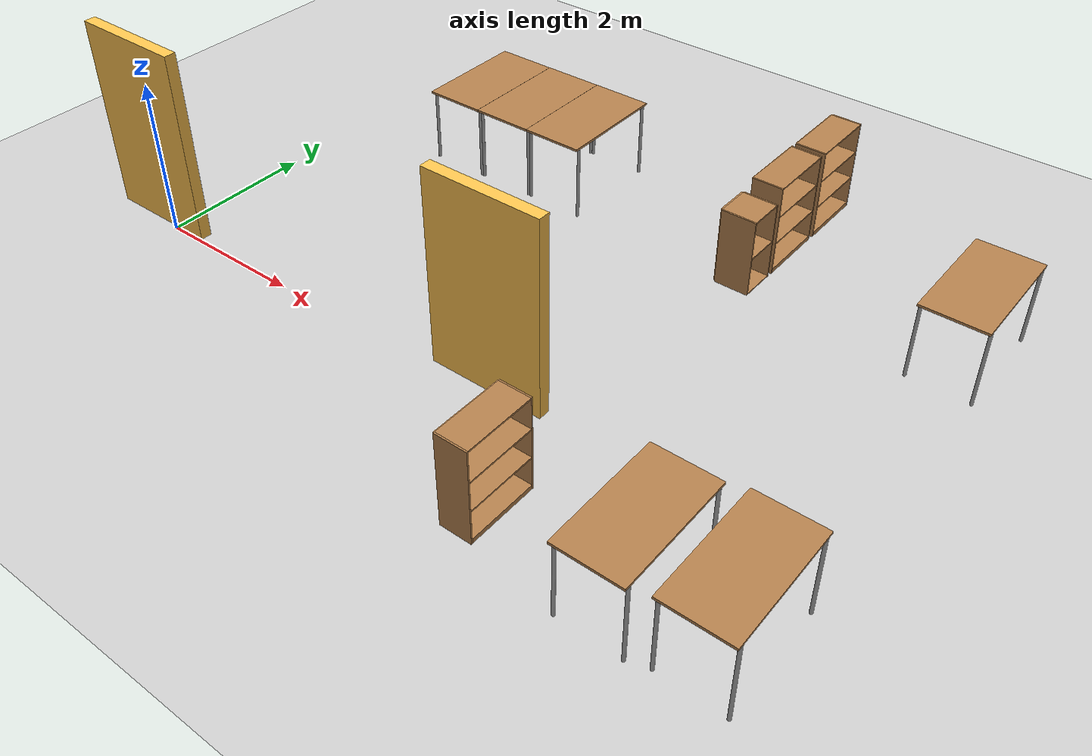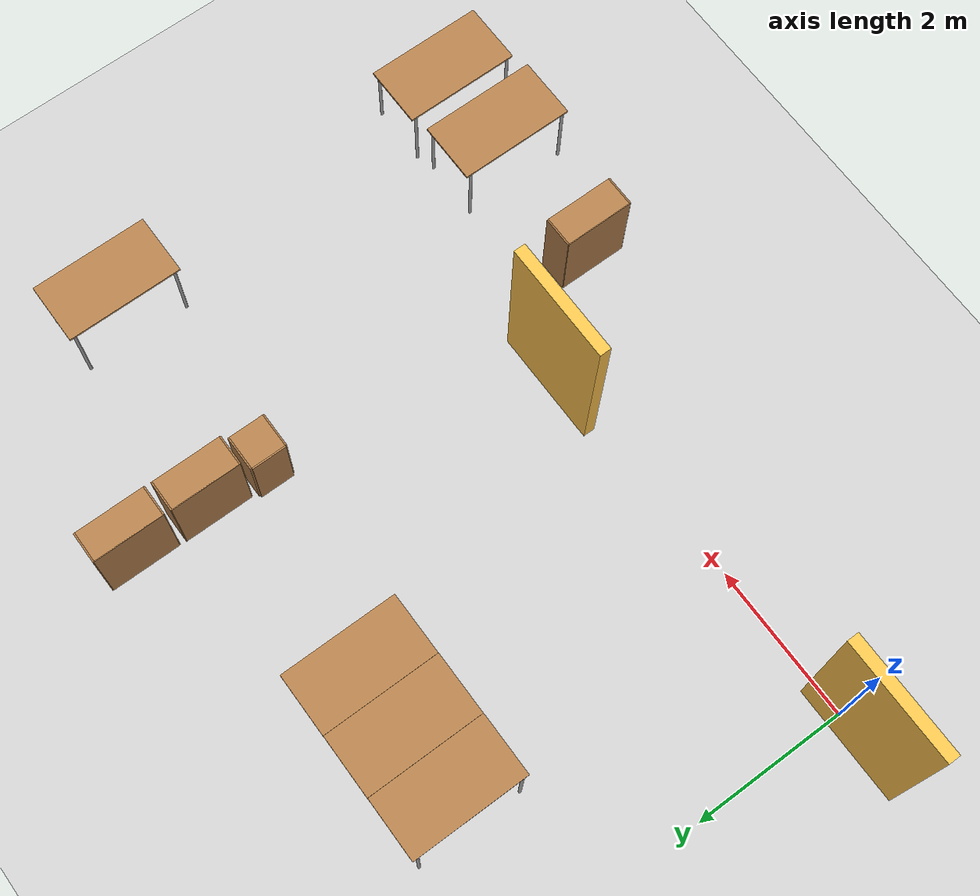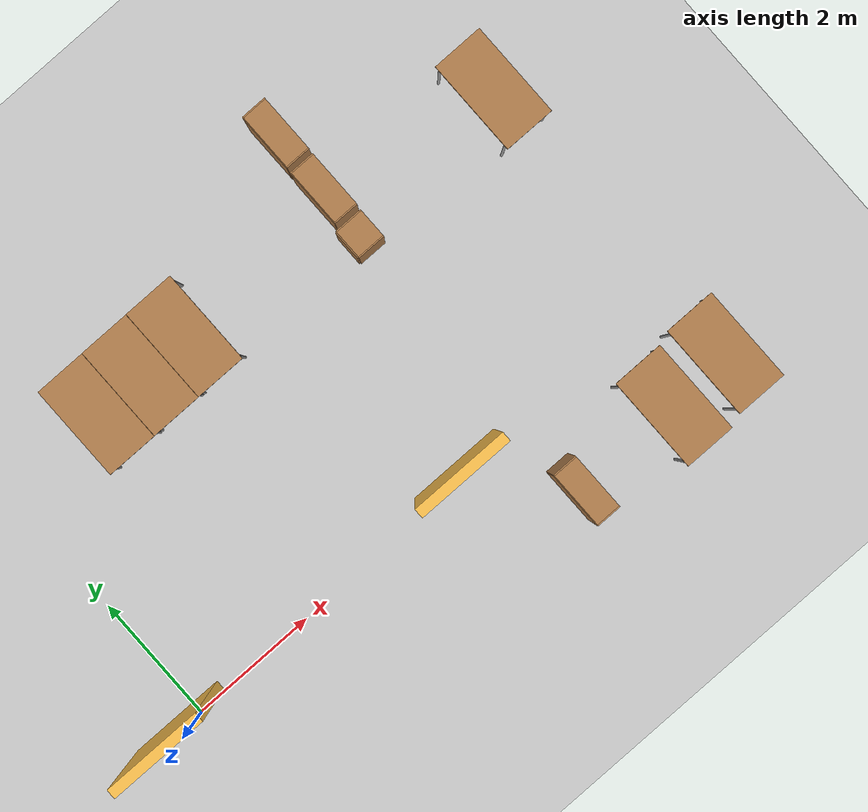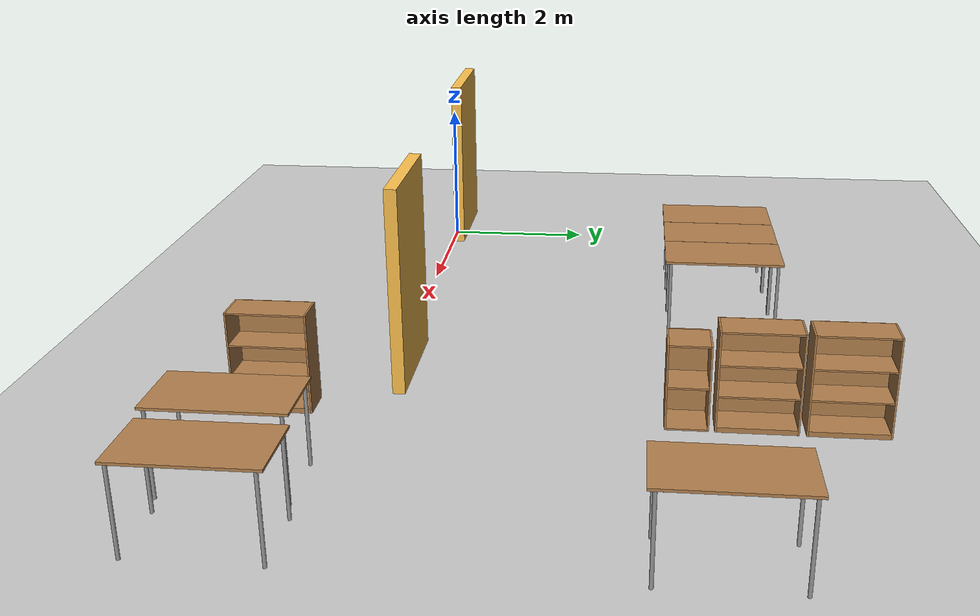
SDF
<sdf version="1.6">
 <world name="default">
  <model name="ground_plane">
   <static>1</static>
   <link name="link">
    <collision name="collision">
     <geometry><plane><normal>0 0 1</normal><size>100 100</size></plane></geometry>
     <surface>
      <contact><collide_bitmask>65535</collide_bitmask></contact>
      <friction><ode><mu>100</mu><mu2>50</mu2></ode></friction>
     </surface>
    </collision>
    <visual name="visual">
     <cast_shadows>0</cast_shadows>
     <geometry><plane><normal>0 0 1</normal><size>100 100</size></plane></geometry>
     <material>
      <script><uri>file://media/materials/scripts/gazebo.material</uri><name>Gazebo/Grey</name></script>
     </material>
    </visual>
   </link>
  </model>
  <model name="model-03">
   <pose>2.36951 0.15153 0 0 -0 0</pose>
   <link name="Wall_83">
    <collision name="Wall_83_Collision">
     <geometry><box><size>1.5 0.15 2.5</size></box></geometry>
     <pose>0 0 1.25 0 -0 0</pose>
    </collision>
    <visual name="Wall_83_Visual">
     <pose>0 0 1.25 0 -0 0</pose>
     <geometry><box><size>1.5 0.15 2.5</size></box></geometry>
     <material>
      <script><uri>file://media/materials/scripts/gazebo.material</uri><name>Gazebo/Grey</name></script>
      <ambient>1 0.764706 0.305882 1</ambient>
     </material>
     <meta><layer>0</layer></meta>
    </visual>
    <pose>-2.6608 -0.049649 0 0 -0 3.14159</pose>
   </link>
   <link name="Wall_85">
    <collision name="Wall_85_Collision">
     <geometry><box><size>1.5 0.15 2.5</size></box></geometry>
     <pose>0 0 1.25 0 -0 0</pose>
    </collision>
    <visual name="Wall_85_Visual">
     <pose>0 0 1.25 0 -0 0</pose>
     <geometry><box><size>1.5 0.15 2.5</size></box></geometry>
     <material>
      <script><uri>file://media/materials/scripts/gazebo.material</uri><name>Gazebo/Grey</name></script>
      <ambient>1 0.764706 0.305882 1</ambient>
     </material>
     <meta><layer>0</layer></meta>
    </visual>
    <pose>2.6608 0.049649 0 0 -0 0</pose>
   </link>
   <static>1</static>
  </model>
  <model name="table">
   <static>1</static>
   <link name="link">
    <collision name="surface">
     <pose>0 0 1 0 -0 0</pose>
     <geometry><box><size>1.5 0.8 0.03</size></box></geometry>
     <surface><friction><ode><mu>0.6</mu><mu2>0.6</mu2></ode></friction></surface>
    </collision>
    <visual name="visual1">
     <pose>0 0 1 0 -0 0</pose>
     <geometry><box><size>1.5 0.8 0.03</size></box></geometry>
     <material>
      <script><uri>file://media/materials/scripts/gazebo.material</uri><name>Gazebo/Wood</name></script>
     </material>
    </visual>
    <collision name="front_left_leg">
     <pose>0.68 0.38 0.5 0 -0 0</pose>
     <geometry><cylinder><radius>0.02</radius><length>1</length></cylinder></geometry>
    </collision>
    <visual name="front_left_leg">
     <pose>0.68 0.38 0.5 0 -0 0</pose>
     <geometry><cylinder><radius>0.02</radius><length>1</length></cylinder></geometry>
     <material>
      <script><uri>file://media/materials/scripts/gazebo.material</uri><name>Gazebo/Grey</name></script>
     </material>
    </visual>
    <collision name="front_right_leg">
     <pose>0.68 -0.38 0.5 0 -0 0</pose>
     <geometry><cylinder><radius>0.02</radius><length>1</length></cylinder></geometry>
    </collision>
    <visual name="front_right_leg">
     <pose>0.68 -0.38 0.5 0 -0 0</pose>
     <geometry><cylinder><radius>0.02</radius><length>1</length></cylinder></geometry>
     <material>
      <script><uri>file://media/materials/scripts/gazebo.material</uri><name>Gazebo/Grey</name></script>
     </material>
    </visual>
    <collision name="back_right_leg">
     <pose>-0.68 -0.38 0.5 0 -0 0</pose>
     <geometry><cylinder><radius>0.02</radius><length>1</length></cylinder></geometry>
    </collision>
    <visual name="back_right_leg">
     <pose>-0.68 -0.38 0.5 0 -0 0</pose>
     <geometry><cylinder><radius>0.02</radius><length>1</length></cylinder></geometry>
     <material>
      <script><uri>file://media/materials/scripts/gazebo.material</uri><name>Gazebo/Grey</name></script>
     </material>
    </visual>
    <collision name="back_left_leg">
     <pose>-0.68 0.38 0.5 0 -0 0</pose>
     <geometry><cylinder><radius>0.02</radius><length>1</length></cylinder></geometry>
    </collision>
    <visual name="back_left_leg">
     <pose>-0.68 0.38 0.5 0 -0 0</pose>
     <geometry><cylinder><radius>0.02</radius><length>1</length></cylinder></geometry>
     <material>
      <script><uri>file://media/materials/scripts/gazebo.material</uri><name>Gazebo/Grey</name></script>
     </material>
    </visual>
   </link>
   <pose>7.81399 -1.06984 -0.000273 0 -0 1.5708</pose>
  </model>
  <model name="table_clone_1">
   <static>1</static>
   <link name="link">
    <collision name="surface">
     <pose>0 0 1 0 -0 0</pose>
     <geometry><box><size>1.5 0.8 0.03</size></box></geometry>
     <surface><friction><ode><mu>0.6</mu><mu2>0.6</mu2></ode></friction></surface>
    </collision>
    <visual name="visual1">
     <pose>0 0 1 0 -0 0</pose>
     <geometry><box><size>1.5 0.8 0.03</size></box></geometry>
     <material>
      <script><uri>file://media/materials/scripts/gazebo.material</uri><name>Gazebo/Wood</name></script>
     </material>
    </visual>
    <collision name="front_left_leg">
     <pose>0.68 0.38 0.5 0 -0 0</pose>
     <geometry><cylinder><radius>0.02</radius><length>1</length></cylinder></geometry>
    </collision>
    <visual name="front_left_leg">
     <pose>0.68 0.38 0.5 0 -0 0</pose>
     <geometry><cylinder><radius>0.02</radius><length>1</length></cylinder></geometry>
     <material>
      <script><uri>file://media/materials/scripts/gazebo.material</uri><name>Gazebo/Grey</name></script>
     </material>
    </visual>
    <collision name="front_right_leg">
     <pose>0.68 -0.38 0.5 0 -0 0</pose>
     <geometry><cylinder><radius>0.02</radius><length>1</length></cylinder></geometry>
    </collision>
    <visual name="front_right_leg">
     <pose>0.68 -0.38 0.5 0 -0 0</pose>
     <geometry><cylinder><radius>0.02</radius><length>1</length></cylinder></geometry>
     <material>
      <script><uri>file://media/materials/scripts/gazebo.material</uri><name>Gazebo/Grey</name></script>
     </material>
    </visual>
    <collision name="back_right_leg">
     <pose>-0.68 -0.38 0.5 0 -0 0</pose>
     <geometry><cylinder><radius>0.02</radius><length>1</length></cylinder></geometry>
    </collision>
    <visual name="back_right_leg">
     <pose>-0.68 -0.38 0.5 0 -0 0</pose>
     <geometry><cylinder><radius>0.02</radius><length>1</length></cylinder></geometry>
     <material>
      <script><uri>file://media/materials/scripts/gazebo.material</uri><name>Gazebo/Grey</name></script>
     </material>
    </visual>
    <collision name="back_left_leg">
     <pose>-0.68 0.38 0.5 0 -0 0</pose>
     <geometry><cylinder><radius>0.02</radius><length>1</length></cylinder></geometry>
    </collision>
    <visual name="back_left_leg">
     <pose>-0.68 0.38 0.5 0 -0 0</pose>
     <geometry><cylinder><radius>0.02</radius><length>1</length></cylinder></geometry>
     <material>
      <script><uri>file://media/materials/scripts/gazebo.material</uri><name>Gazebo/Grey</name></script>
     </material>
    </visual>
   </link>
   <pose>8.81542 -0.994729 0 0 -0 1.5708</pose>
  </model>
  <model name="table_clone_1_clone">
   <static>1</static>
   <link name="link">
    <collision name="surface">
     <pose>0 0 1 0 -0 0</pose>
     <geometry><box><size>1.5 0.8 0.03</size></box></geometry>
     <surface><friction><ode><mu>0.6</mu><mu2>0.6</mu2></ode></friction></surface>
    </collision>
    <visual name="visual1">
     <pose>0 0 1 0 -0 0</pose>
     <geometry><box><size>1.5 0.8 0.03</size></box></geometry>
     <material>
      <script><uri>file://media/materials/scripts/gazebo.material</uri><name>Gazebo/Wood</name></script>
     </material>
    </visual>
    <collision name="front_left_leg">
     <pose>0.68 0.38 0.5 0 -0 0</pose>
     <geometry><cylinder><radius>0.02</radius><length>1</length></cylinder></geometry>
    </collision>
    <visual name="front_left_leg">
     <pose>0.68 0.38 0.5 0 -0 0</pose>
     <geometry><cylinder><radius>0.02</radius><length>1</length></cylinder></geometry>
     <material>
      <script><uri>file://media/materials/scripts/gazebo.material</uri><name>Gazebo/Grey</name></script>
     </material>
    </visual>
    <collision name="front_right_leg">
     <pose>0.68 -0.38 0.5 0 -0 0</pose>
     <geometry><cylinder><radius>0.02</radius><length>1</length></cylinder></geometry>
    </collision>
    <visual name="front_right_leg">
     <pose>0.68 -0.38 0.5 0 -0 0</pose>
     <geometry><cylinder><radius>0.02</radius><length>1</length></cylinder></geometry>
     <material>
      <script><uri>file://media/materials/scripts/gazebo.material</uri><name>Gazebo/Grey</name></script>
     </material>
    </visual>
    <collision name="back_right_leg">
     <pose>-0.68 -0.38 0.5 0 -0 0</pose>
     <geometry><cylinder><radius>0.02</radius><length>1</length></cylinder></geometry>
    </collision>
    <visual name="back_right_leg">
     <pose>-0.68 -0.38 0.5 0 -0 0</pose>
     <geometry><cylinder><radius>0.02</radius><length>1</length></cylinder></geometry>
     <material>
      <script><uri>file://media/materials/scripts/gazebo.material</uri><name>Gazebo/Grey</name></script>
     </material>
    </visual>
    <collision name="back_left_leg">
     <pose>-0.68 0.38 0.5 0 -0 0</pose>
     <geometry><cylinder><radius>0.02</radius><length>1</length></cylinder></geometry>
    </collision>
    <visual name="back_left_leg">
     <pose>-0.68 0.38 0.5 0 -0 0</pose>
     <geometry><cylinder><radius>0.02</radius><length>1</length></cylinder></geometry>
     <material>
      <script><uri>file://media/materials/scripts/gazebo.material</uri><name>Gazebo/Grey</name></script>
     </material>
    </visual>
   </link>
   <pose>8.81647 3.80552 0 0 -0 1.5708</pose>
  </model>
  <model name="bookshelf">
   <static>1</static>
   <link name="link">
    <inertial><mass>1</mass></inertial>
    <collision name="back">
     <pose>0 0.005 0.6 0 -0 0</pose>
     <geometry><box><size>0.9 0.01 1.2</size></box></geometry>
    </collision>
    <visual name="visual1">
     <pose>0 0.005 0.6 0 -0 0</pose>
     <geometry><box><size>0.9 0.01 1.2</size></box></geometry>
     <material>
      <script><uri>file://media/materials/scripts/gazebo.material</uri><name>Gazebo/Wood</name></script>
     </material>
    </visual>
    <collision name="left_side">
     <pose>0.45 -0.195 0.6 0 -0 0</pose>
     <geometry><box><size>0.02 0.4 1.2</size></box></geometry>
    </collision>
    <visual name="visual2">
     <pose>0.45 -0.195 0.6 0 -0 0</pose>
     <geometry><box><size>0.02 0.4 1.2</size></box></geometry>
     <material>
      <script><uri>file://media/materials/scripts/gazebo.material</uri><name>Gazebo/Wood</name></script>
     </material>
    </visual>
    <collision name="right_side">
     <pose>-0.45 -0.195 0.6 0 -0 0</pose>
     <geometry><box><size>0.02 0.4 1.2</size></box></geometry>
    </collision>
    <visual name="visual3">
     <pose>-0.45 -0.195 0.6 0 -0 0</pose>
     <geometry><box><size>0.02 0.4 1.2</size></box></geometry>
     <material>
      <script><uri>file://media/materials/scripts/gazebo.material</uri><name>Gazebo/Wood</name></script>
     </material>
    </visual>
    <collision name="bottom">
     <pose>0 -0.195 0.03 0 -0 0</pose>
     <geometry><box><size>0.88 0.4 0.06</size></box></geometry>
    </collision>
    <visual name="visual4">
     <pose>0 -0.195 0.03 0 -0 0</pose>
     <geometry><box><size>0.88 0.4 0.06</size></box></geometry>
     <material>
      <script><uri>file://media/materials/scripts/gazebo.material</uri><name>Gazebo/Wood</name></script>
     </material>
    </visual>
    <collision name="top">
     <pose>0 -0.195 1.19 0 -0 0</pose>
     <geometry><box><size>0.88 0.4 0.02</size></box></geometry>
    </collision>
    <visual name="visual5">
     <pose>0 -0.195 1.19 0 -0 0</pose>
     <geometry><box><size>0.88 0.4 0.02</size></box></geometry>
     <material>
      <script><uri>file://media/materials/scripts/gazebo.material</uri><name>Gazebo/Wood</name></script>
     </material>
    </visual>
    <collision name="low_shelf">
     <pose>0 -0.195 0.43 0 -0 0</pose>
     <geometry><box><size>0.88 0.4 0.02</size></box></geometry>
    </collision>
    <visual name="visual6">
     <pose>0 -0.195 0.43 0 -0 0</pose>
     <geometry><box><size>0.88 0.4 0.02</size></box></geometry>
     <material>
      <script><uri>file://media/materials/scripts/gazebo.material</uri><name>Gazebo/Wood</name></script>
     </material>
    </visual>
    <collision name="high_shelf">
     <pose>0 -0.195 0.8 0 -0 0</pose>
     <geometry><box><size>0.88 0.4 0.02</size></box></geometry>
    </collision>
    <visual name="visual7">
     <pose>0 -0.195 0.8 0 -0 0</pose>
     <geometry><box><size>0.88 0.4 0.02</size></box></geometry>
     <material>
      <script><uri>file://media/materials/scripts/gazebo.material</uri><name>Gazebo/Wood</name></script>
     </material>
    </visual>
   </link>
   <pose>5.97643 4.28947 0 0 -0 1.5708</pose>
  </model>
  <model name="cabinet">
   <static>1</static>
   <link name="cabinet_bottom_plate">
    <inertial>
     <pose>0 0 -1 0 -0 0</pose>
     <inertia><ixx>2.05</ixx><ixy>0</ixy><ixz>0</ixz><iyy>2.05</iyy><iyz>0</iyz><izz>2.05</izz></inertia>
     <mass>25</mass>
    </inertial>
    <collision name="cabinet_bottom_plate_geom">
     <pose>0 0 0.01 0 -0 0</pose>
     <geometry><box><size>0.45 0.45 0.02</size></box></geometry>
    </collision>
    <visual name="cabinet_bottom_plate_geom_visual">
     <pose>0 0 0.01 0 -0 0</pose>
     <geometry><box><size>0.45 0.45 0.02</size></box></geometry>
     <material>
      <script><uri>file://media/materials/scripts/gazebo.material</uri><name>Gazebo/Wood</name></script>
     </material>
    </visual>
    <collision name="cabinet_bottom_plate_geom_cabinet_back_plate">
     <pose>0.235 0 0.51 0 -0 0</pose>
     <geometry><box><size>0.02 0.45 1.02</size></box></geometry>
    </collision>
    <visual name="cabinet_bottom_plate_geom_cabinet_back_plate_visual">
     <pose>0.235 0 0.51 0 -0 0</pose>
     <geometry><box><size>0.02 0.45 1.02</size></box></geometry>
     <material>
      <script><uri>file://media/materials/scripts/gazebo.material</uri><name>Gazebo/Wood</name></script>
     </material>
    </visual>
    <collision name="cabinet_bottom_plate_geom_cabinet_left_plate">
     <pose>0 0.235 0.51 0 -0 0</pose>
     <geometry><box><size>0.45 0.02 1.02</size></box></geometry>
    </collision>
    <visual name="cabinet_bottom_plate_geom_cabinet_left_plate_visual">
     <pose>0 0.235 0.51 0 -0 0</pose>
     <geometry><box><size>0.45 0.02 1.02</size></box></geometry>
     <material>
      <script><uri>file://media/materials/scripts/gazebo.material</uri><name>Gazebo/Wood</name></script>
     </material>
    </visual>
    <collision name="cabinet_bottom_plate_geom_cabinet_middle_plate">
     <pose>0 0 0.51 0 -0 0</pose>
     <geometry><box><size>0.45 0.45 0.02</size></box></geometry>
    </collision>
    <visual name="cabinet_bottom_plate_geom_cabinet_middle_plate_visual">
     <pose>0 0 0.51 0 -0 0</pose>
     <geometry><box><size>0.45 0.45 0.02</size></box></geometry>
     <material>
      <script><uri>file://media/materials/scripts/gazebo.material</uri><name>Gazebo/Wood</name></script>
     </material>
    </visual>
    <collision name="cabinet_bottom_plate_geom_cabinet_right_plate">
     <pose>0 -0.235 0.51 0 -0 0</pose>
     <geometry><box><size>0.45 0.02 1.02</size></box></geometry>
    </collision>
    <visual name="cabinet_bottom_plate_geom_cabinet_right_plate_visual">
     <pose>0 -0.235 0.51 0 -0 0</pose>
     <geometry><box><size>0.45 0.02 1.02</size></box></geometry>
     <material>
      <script><uri>file://media/materials/scripts/gazebo.material</uri><name>Gazebo/Wood</name></script>
     </material>
    </visual>
    <collision name="cabinet_bottom_plate_geom_cabinet_top_plate">
     <pose>0 0 1.01 0 -0 0</pose>
     <geometry><box><size>0.45 0.45 0.02</size></box></geometry>
    </collision>
    <visual name="cabinet_bottom_plate_geom_cabinet_top_plate_visual">
     <pose>0 0 1.01 0 -0 0</pose>
     <geometry><box><size>0.45 0.45 0.02</size></box></geometry>
     <material>
      <script><uri>file://media/materials/scripts/gazebo.material</uri><name>Gazebo/Wood</name></script>
     </material>
    </visual>
   </link>
   <pose>6.14148 3.52326 0 0 -0 3.1415</pose>
  </model>
  <model name="bookshelf_clone_3">
   <static>1</static>
   <link name="link">
    <inertial><mass>1</mass></inertial>
    <collision name="back">
     <pose>0 0.005 0.6 0 -0 0</pose>
     <geometry><box><size>0.9 0.01 1.2</size></box></geometry>
    </collision>
    <visual name="visual1">
     <pose>0 0.005 0.6 0 -0 0</pose>
     <geometry><box><size>0.9 0.01 1.2</size></box></geometry>
     <material>
      <script><uri>file://media/materials/scripts/gazebo.material</uri><name>Gazebo/Wood</name></script>
     </material>
    </visual>
    <collision name="left_side">
     <pose>0.45 -0.195 0.6 0 -0 0</pose>
     <geometry><box><size>0.02 0.4 1.2</size></box></geometry>
    </collision>
    <visual name="visual2">
     <pose>0.45 -0.195 0.6 0 -0 0</pose>
     <geometry><box><size>0.02 0.4 1.2</size></box></geometry>
     <material>
      <script><uri>file://media/materials/scripts/gazebo.material</uri><name>Gazebo/Wood</name></script>
     </material>
    </visual>
    <collision name="right_side">
     <pose>-0.45 -0.195 0.6 0 -0 0</pose>
     <geometry><box><size>0.02 0.4 1.2</size></box></geometry>
    </collision>
    <visual name="visual3">
     <pose>-0.45 -0.195 0.6 0 -0 0</pose>
     <geometry><box><size>0.02 0.4 1.2</size></box></geometry>
     <material>
      <script><uri>file://media/materials/scripts/gazebo.material</uri><name>Gazebo/Wood</name></script>
     </material>
    </visual>
    <collision name="bottom">
     <pose>0 -0.195 0.03 0 -0 0</pose>
     <geometry><box><size>0.88 0.4 0.06</size></box></geometry>
    </collision>
    <visual name="visual4">
     <pose>0 -0.195 0.03 0 -0 0</pose>
     <geometry><box><size>0.88 0.4 0.06</size></box></geometry>
     <material>
      <script><uri>file://media/materials/scripts/gazebo.material</uri><name>Gazebo/Wood</name></script>
     </material>
    </visual>
    <collision name="top">
     <pose>0 -0.195 1.19 0 -0 0</pose>
     <geometry><box><size>0.88 0.4 0.02</size></box></geometry>
    </collision>
    <visual name="visual5">
     <pose>0 -0.195 1.19 0 -0 0</pose>
     <geometry><box><size>0.88 0.4 0.02</size></box></geometry>
     <material>
      <script><uri>file://media/materials/scripts/gazebo.material</uri><name>Gazebo/Wood</name></script>
     </material>
    </visual>
    <collision name="low_shelf">
     <pose>0 -0.195 0.43 0 -0 0</pose>
     <geometry><box><size>0.88 0.4 0.02</size></box></geometry>
    </collision>
    <visual name="visual6">
     <pose>0 -0.195 0.43 0 -0 0</pose>
     <geometry><box><size>0.88 0.4 0.02</size></box></geometry>
     <material>
      <script><uri>file://media/materials/scripts/gazebo.material</uri><name>Gazebo/Wood</name></script>
     </material>
    </visual>
    <collision name="high_shelf">
     <pose>0 -0.195 0.8 0 -0 0</pose>
     <geometry><box><size>0.88 0.4 0.02</size></box></geometry>
    </collision>
    <visual name="visual7">
     <pose>0 -0.195 0.8 0 -0 0</pose>
     <geometry><box><size>0.88 0.4 0.02</size></box></geometry>
     <material>
      <script><uri>file://media/materials/scripts/gazebo.material</uri><name>Gazebo/Wood</name></script>
     </material>
    </visual>
   </link>
   <pose>5.94789 -1.13735 0 0 -0 1.5708</pose>
  </model>
  <model name="bookshelf_clone_4">
   <static>1</static>
   <link name="link">
    <inertial><mass>1</mass></inertial>
    <collision name="back">
     <pose>0 0.005 0.6 0 -0 0</pose>
     <geometry><box><size>0.9 0.01 1.2</size></box></geometry>
    </collision>
    <visual name="visual1">
     <pose>0 0.005 0.6 0 -0 0</pose>
     <geometry><box><size>0.9 0.01 1.2</size></box></geometry>
     <material>
      <script><uri>file://media/materials/scripts/gazebo.material</uri><name>Gazebo/Wood</name></script>
     </material>
    </visual>
    <collision name="left_side">
     <pose>0.45 -0.195 0.6 0 -0 0</pose>
     <geometry><box><size>0.02 0.4 1.2</size></box></geometry>
    </collision>
    <visual name="visual2">
     <pose>0.45 -0.195 0.6 0 -0 0</pose>
     <geometry><box><size>0.02 0.4 1.2</size></box></geometry>
     <material>
      <script><uri>file://media/materials/scripts/gazebo.material</uri><name>Gazebo/Wood</name></script>
     </material>
    </visual>
    <collision name="right_side">
     <pose>-0.45 -0.195 0.6 0 -0 0</pose>
     <geometry><box><size>0.02 0.4 1.2</size></box></geometry>
    </collision>
    <visual name="visual3">
     <pose>-0.45 -0.195 0.6 0 -0 0</pose>
     <geometry><box><size>0.02 0.4 1.2</size></box></geometry>
     <material>
      <script><uri>file://media/materials/scripts/gazebo.material</uri><name>Gazebo/Wood</name></script>
     </material>
    </visual>
    <collision name="bottom">
     <pose>0 -0.195 0.03 0 -0 0</pose>
     <geometry><box><size>0.88 0.4 0.06</size></box></geometry>
    </collision>
    <visual name="visual4">
     <pose>0 -0.195 0.03 0 -0 0</pose>
     <geometry><box><size>0.88 0.4 0.06</size></box></geometry>
     <material>
      <script><uri>file://media/materials/scripts/gazebo.material</uri><name>Gazebo/Wood</name></script>
     </material>
    </visual>
    <collision name="top">
     <pose>0 -0.195 1.19 0 -0 0</pose>
     <geometry><box><size>0.88 0.4 0.02</size></box></geometry>
    </collision>
    <visual name="visual5">
     <pose>0 -0.195 1.19 0 -0 0</pose>
     <geometry><box><size>0.88 0.4 0.02</size></box></geometry>
     <material>
      <script><uri>file://media/materials/scripts/gazebo.material</uri><name>Gazebo/Wood</name></script>
     </material>
    </visual>
    <collision name="low_shelf">
     <pose>0 -0.195 0.43 0 -0 0</pose>
     <geometry><box><size>0.88 0.4 0.02</size></box></geometry>
    </collision>
    <visual name="visual6">
     <pose>0 -0.195 0.43 0 -0 0</pose>
     <geometry><box><size>0.88 0.4 0.02</size></box></geometry>
     <material>
      <script><uri>file://media/materials/scripts/gazebo.material</uri><name>Gazebo/Wood</name></script>
     </material>
    </visual>
    <collision name="high_shelf">
     <pose>0 -0.195 0.8 0 -0 0</pose>
     <geometry><box><size>0.88 0.4 0.02</size></box></geometry>
    </collision>
    <visual name="visual7">
     <pose>0 -0.195 0.8 0 -0 0</pose>
     <geometry><box><size>0.88 0.4 0.02</size></box></geometry>
     <material>
      <script><uri>file://media/materials/scripts/gazebo.material</uri><name>Gazebo/Wood</name></script>
     </material>
    </visual>
   </link>
   <pose>5.9842 5.28249 0 0 -0 1.5708</pose>
  </model>
  <model name="table_clone_1_clone_clone">
   <static>1</static>
   <link name="link">
    <collision name="surface">
     <pose>0 0 1 0 -0 0</pose>
     <geometry><box><size>1.5 0.8 0.03</size></box></geometry>
     <surface><friction><ode><mu>0.6</mu><mu2>0.6</mu2></ode></friction></surface>
    </collision>
    <visual name="visual1">
     <pose>0 0 1 0 -0 0</pose>
     <geometry><box><size>1.5 0.8 0.03</size></box></geometry>
     <material>
      <script><uri>file://media/materials/scripts/gazebo.material</uri><name>Gazebo/Wood</name></script>
     </material>
    </visual>
    <collision name="front_left_leg">
     <pose>0.68 0.38 0.5 0 -0 0</pose>
     <geometry><cylinder><radius>0.02</radius><length>1</length></cylinder></geometry>
    </collision>
    <visual name="front_left_leg">
     <pose>0.68 0.38 0.5 0 -0 0</pose>
     <geometry><cylinder><radius>0.02</radius><length>1</length></cylinder></geometry>
     <material>
      <script><uri>file://media/materials/scripts/gazebo.material</uri><name>Gazebo/Grey</name></script>
     </material>
    </visual>
    <collision name="front_right_leg">
     <pose>0.68 -0.38 0.5 0 -0 0</pose>
     <geometry><cylinder><radius>0.02</radius><length>1</length></cylinder></geometry>
    </collision>
    <visual name="front_right_leg">
     <pose>0.68 -0.38 0.5 0 -0 0</pose>
     <geometry><cylinder><radius>0.02</radius><length>1</length></cylinder></geometry>
     <material>
      <script><uri>file://media/materials/scripts/gazebo.material</uri><name>Gazebo/Grey</name></script>
     </material>
    </visual>
    <collision name="back_right_leg">
     <pose>-0.68 -0.38 0.5 0 -0 0</pose>
     <geometry><cylinder><radius>0.02</radius><length>1</length></cylinder></geometry>
    </collision>
    <visual name="back_right_leg">
     <pose>-0.68 -0.38 0.5 0 -0 0</pose>
     <geometry><cylinder><radius>0.02</radius><length>1</length></cylinder></geometry>
     <material>
      <script><uri>file://media/materials/scripts/gazebo.material</uri><name>Gazebo/Grey</name></script>
     </material>
    </visual>
    <collision name="back_left_leg">
     <pose>-0.68 0.38 0.5 0 -0 0</pose>
     <geometry><cylinder><radius>0.02</radius><length>1</length></cylinder></geometry>
    </collision>
    <visual name="back_left_leg">
     <pose>-0.68 0.38 0.5 0 -0 0</pose>
     <geometry><cylinder><radius>0.02</radius><length>1</length></cylinder></geometry>
     <material>
      <script><uri>file://media/materials/scripts/gazebo.material</uri><name>Gazebo/Grey</name></script>
     </material>
    </visual>
   </link>
   <pose>1.81307 4.04824 0 0 -0 1.5708</pose>
  </model>
  <model name="table_clone_1_clone_clone_0">
   <static>1</static>
   <link name="link">
    <collision name="surface">
     <pose>0 0 1 0 -0 0</pose>
     <geometry><box><size>1.5 0.8 0.03</size></box></geometry>
     <surface><friction><ode><mu>0.6</mu><mu2>0.6</mu2></ode></friction></surface>
    </collision>
    <visual name="visual1">
     <pose>0 0 1 0 -0 0</pose>
     <geometry><box><size>1.5 0.8 0.03</size></box></geometry>
     <material>
      <script><uri>file://media/materials/scripts/gazebo.material</uri><name>Gazebo/Wood</name></script>
     </material>
    </visual>
    <collision name="front_left_leg">
     <pose>0.68 0.38 0.5 0 -0 0</pose>
     <geometry><cylinder><radius>0.02</radius><length>1</length></cylinder></geometry>
    </collision>
    <visual name="front_left_leg">
     <pose>0.68 0.38 0.5 0 -0 0</pose>
     <geometry><cylinder><radius>0.02</radius><length>1</length></cylinder></geometry>
     <material>
      <script><uri>file://media/materials/scripts/gazebo.material</uri><name>Gazebo/Grey</name></script>
     </material>
    </visual>
    <collision name="front_right_leg">
     <pose>0.68 -0.38 0.5 0 -0 0</pose>
     <geometry><cylinder><radius>0.02</radius><length>1</length></cylinder></geometry>
    </collision>
    <visual name="front_right_leg">
     <pose>0.68 -0.38 0.5 0 -0 0</pose>
     <geometry><cylinder><radius>0.02</radius><length>1</length></cylinder></geometry>
     <material>
      <script><uri>file://media/materials/scripts/gazebo.material</uri><name>Gazebo/Grey</name></script>
     </material>
    </visual>
    <collision name="back_right_leg">
     <pose>-0.68 -0.38 0.5 0 -0 0</pose>
     <geometry><cylinder><radius>0.02</radius><length>1</length></cylinder></geometry>
    </collision>
    <visual name="back_right_leg">
     <pose>-0.68 -0.38 0.5 0 -0 0</pose>
     <geometry><cylinder><radius>0.02</radius><length>1</length></cylinder></geometry>
     <material>
      <script><uri>file://media/materials/scripts/gazebo.material</uri><name>Gazebo/Grey</name></script>
     </material>
    </visual>
    <collision name="back_left_leg">
     <pose>-0.68 0.38 0.5 0 -0 0</pose>
     <geometry><cylinder><radius>0.02</radius><length>1</length></cylinder></geometry>
    </collision>
    <visual name="back_left_leg">
     <pose>-0.68 0.38 0.5 0 -0 0</pose>
     <geometry><cylinder><radius>0.02</radius><length>1</length></cylinder></geometry>
     <material>
      <script><uri>file://media/materials/scripts/gazebo.material</uri><name>Gazebo/Grey</name></script>
     </material>
    </visual>
   </link>
   <pose>2.61508 4.05051 0 0 -0 1.5708</pose>
  </model>
  <model name="table_clone_1_clone_clone_1">
   <static>1</static>
   <link name="link">
    <collision name="surface">
     <pose>0 0 1 0 -0 0</pose>
     <geometry><box><size>1.5 0.8 0.03</size></box></geometry>
     <surface><friction><ode><mu>0.6</mu><mu2>0.6</mu2></ode></friction></surface>
    </collision>
    <visual name="visual1">
     <pose>0 0 1 0 -0 0</pose>
     <geometry><box><size>1.5 0.8 0.03</size></box></geometry>
     <material>
      <script><uri>file://media/materials/scripts/gazebo.material</uri><name>Gazebo/Wood</name></script>
     </material>
    </visual>
    <collision name="front_left_leg">
     <pose>0.68 0.38 0.5 0 -0 0</pose>
     <geometry><cylinder><radius>0.02</radius><length>1</length></cylinder></geometry>
    </collision>
    <visual name="front_left_leg">
     <pose>0.68 0.38 0.5 0 -0 0</pose>
     <geometry><cylinder><radius>0.02</radius><length>1</length></cylinder></geometry>
     <material>
      <script><uri>file://media/materials/scripts/gazebo.material</uri><name>Gazebo/Grey</name></script>
     </material>
    </visual>
    <collision name="front_right_leg">
     <pose>0.68 -0.38 0.5 0 -0 0</pose>
     <geometry><cylinder><radius>0.02</radius><length>1</length></cylinder></geometry>
    </collision>
    <visual name="front_right_leg">
     <pose>0.68 -0.38 0.5 0 -0 0</pose>
     <geometry><cylinder><radius>0.02</radius><length>1</length></cylinder></geometry>
     <material>
      <script><uri>file://media/materials/scripts/gazebo.material</uri><name>Gazebo/Grey</name></script>
     </material>
    </visual>
    <collision name="back_right_leg">
     <pose>-0.68 -0.38 0.5 0 -0 0</pose>
     <geometry><cylinder><radius>0.02</radius><length>1</length></cylinder></geometry>
    </collision>
    <visual name="back_right_leg">
     <pose>-0.68 -0.38 0.5 0 -0 0</pose>
     <geometry><cylinder><radius>0.02</radius><length>1</length></cylinder></geometry>
     <material>
      <script><uri>file://media/materials/scripts/gazebo.material</uri><name>Gazebo/Grey</name></script>
     </material>
    </visual>
    <collision name="back_left_leg">
     <pose>-0.68 0.38 0.5 0 -0 0</pose>
     <geometry><cylinder><radius>0.02</radius><length>1</length></cylinder></geometry>
    </collision>
    <visual name="back_left_leg">
     <pose>-0.68 0.38 0.5 0 -0 0</pose>
     <geometry><cylinder><radius>0.02</radius><length>1</length></cylinder></geometry>
     <material>
      <script><uri>file://media/materials/scripts/gazebo.material</uri><name>Gazebo/Grey</name></script>
     </material>
    </visual>
   </link>
   <pose>3.41714 4.0527 0 0 -0 1.5708</pose>
  </model>
 </world>
</sdf>
